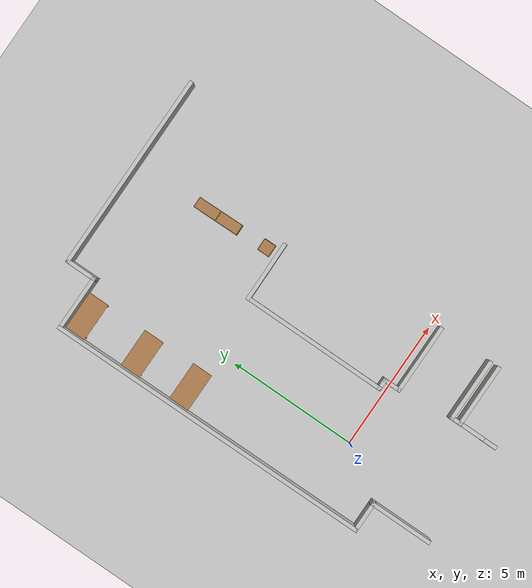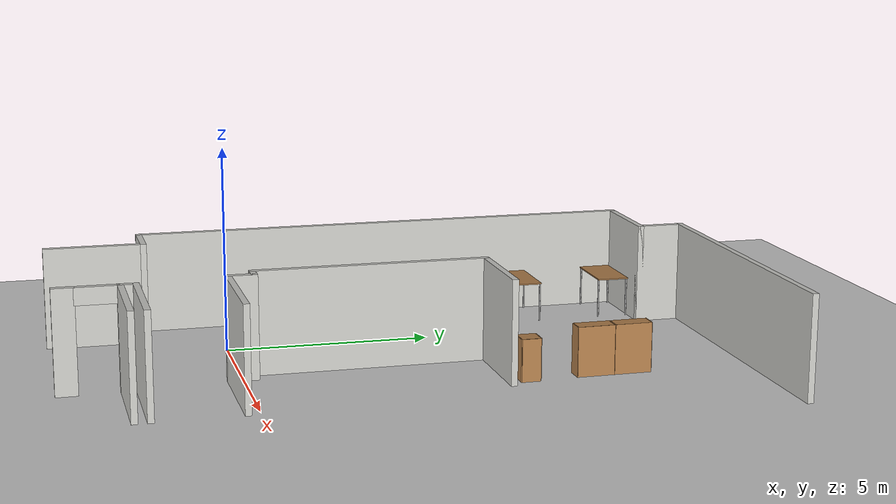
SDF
<sdf version="1.7">
 <world name="default">
  <model name="ground_plane">
   <static>1</static>
   <link name="link">
    <collision name="collision">
     <geometry><plane><normal>0 0 1</normal><size>100 100</size></plane></geometry>
     <surface>
      <contact><collide_bitmask>65535</collide_bitmask></contact>
      <friction><ode><mu>100</mu><mu2>50</mu2></ode></friction>
     </surface>
    </collision>
    <visual name="visual">
     <cast_shadows>0</cast_shadows>
     <geometry><plane><normal>0 0 1</normal><size>100 100</size></plane></geometry>
     <material>
      <script><uri>file://media/materials/scripts/gazebo.material</uri><name>Gazebo/Grey</name></script>
     </material>
    </visual>
   </link>
  </model>
  <model name="map_depo">
   <link name="Wall_11">
    <pose>-9.3996 12.685 0 0 -0 1.5708</pose>
    <visual name="Wall_11_Visual">
     <pose>0 0 1.25 0 -0 0</pose>
     <geometry><box><size>1.25 0.15 2.5</size></box></geometry>
     <material>
      <script><uri>file://media/materials/scripts/gazebo.material</uri><name>Gazebo/CeilingTiled</name></script>
      <ambient>1 1 1 1</ambient>
      <shader type="pixel"/>
     </material>
     <meta><layer>0</layer></meta>
    </visual>
    <collision name="Wall_11_Collision">
     <pose>0 0 1.25 0 -0 0</pose>
     <geometry><box><size>1.25 0.15 2.5</size></box></geometry>
     <surface>
      <friction>
       <ode><mu>1</mu><mu2>1</mu2><fdir1>0 0 0</fdir1><slip1>0</slip1><slip2>0</slip2></ode>
       <torsional>
        <coefficient>1</coefficient>
        <patch_radius>0</patch_radius>
        <surface_radius>0</surface_radius>
        <use_patch_radius>1</use_patch_radius>
        <ode><slip>0</slip></ode>
       </torsional>
      </friction>
      <bounce><restitution_coefficient>0</restitution_coefficient><threshold>1e+06</threshold></bounce>
      <contact>
       <collide_without_contact>0</collide_without_contact>
       <collide_without_contact_bitmask>1</collide_without_contact_bitmask>
       <collide_bitmask>1</collide_bitmask>
       <ode>
        <soft_cfm>0</soft_cfm>
        <soft_erp>0.2</soft_erp>
        <kp>1e+13</kp>
        <kd>1</kd>
        <max_vel>0.01</max_vel>
        <min_depth>0</min_depth>
       </ode>
       <bullet>
        <split_impulse>1</split_impulse>
        <split_impulse_penetration_threshold>-0.01</split_impulse_penetration_threshold>
        <soft_cfm>0</soft_cfm>
        <soft_erp>0.2</soft_erp>
        <kp>1e+13</kp>
        <kd>1</kd>
       </bullet>
      </contact>
     </surface>
    </collision>
   </link>
   <link name="Wall_12">
    <pose>-5.5996 13.235 0 0 -0 0</pose>
    <visual name="Wall_12_Visual">
     <pose>0 0 1.25 0 -0 0</pose>
     <geometry><box><size>7.75 0.15 2.5</size></box></geometry>
     <material>
      <script><uri>file://media/materials/scripts/gazebo.material</uri><name>Gazebo/CeilingTiled</name></script>
      <ambient>1 1 1 1</ambient>
      <shader type="pixel"/>
     </material>
     <meta><layer>0</layer></meta>
    </visual>
    <collision name="Wall_12_Collision">
     <pose>0 0 1.25 0 -0 0</pose>
     <geometry><box><size>7.75 0.15 2.5</size></box></geometry>
     <surface>
      <friction>
       <ode><mu>1</mu><mu2>1</mu2><fdir1>0 0 0</fdir1><slip1>0</slip1><slip2>0</slip2></ode>
       <torsional>
        <coefficient>1</coefficient>
        <patch_radius>0</patch_radius>
        <surface_radius>0</surface_radius>
        <use_patch_radius>1</use_patch_radius>
        <ode><slip>0</slip></ode>
       </torsional>
      </friction>
      <bounce><restitution_coefficient>0</restitution_coefficient><threshold>1e+06</threshold></bounce>
      <contact>
       <collide_without_contact>0</collide_without_contact>
       <collide_without_contact_bitmask>1</collide_without_contact_bitmask>
       <collide_bitmask>1</collide_bitmask>
       <ode>
        <soft_cfm>0</soft_cfm>
        <soft_erp>0.2</soft_erp>
        <kp>1e+13</kp>
        <kd>1</kd>
        <max_vel>0.01</max_vel>
        <min_depth>0</min_depth>
       </ode>
       <bullet>
        <split_impulse>1</split_impulse>
        <split_impulse_penetration_threshold>-0.01</split_impulse_penetration_threshold>
        <soft_cfm>0</soft_cfm>
        <soft_erp>0.2</soft_erp>
        <kp>1e+13</kp>
        <kd>1</kd>
       </bullet>
      </contact>
     </surface>
    </collision>
   </link>
   <link name="Wall_17">
    <pose>-5.75463 7.27506 0 0 0 -3.13263</pose>
    <visual name="Wall_17_Visual">
     <pose>0 0 1.25 0 -0 0</pose>
     <geometry><box><size>2.39372 0.15 2.5</size></box></geometry>
     <material>
      <script><uri>file://media/materials/scripts/gazebo.material</uri><name>Gazebo/CeilingTiled</name></script>
      <ambient>1 1 1 1</ambient>
      <shader type="pixel"/>
     </material>
     <meta><layer>0</layer></meta>
    </visual>
    <collision name="Wall_17_Collision">
     <pose>0 0 1.25 0 -0 0</pose>
     <geometry><box><size>2.39372 0.15 2.5</size></box></geometry>
     <surface>
      <friction>
       <ode><mu>1</mu><mu2>1</mu2><fdir1>0 0 0</fdir1><slip1>0</slip1><slip2>0</slip2></ode>
       <torsional>
        <coefficient>1</coefficient>
        <patch_radius>0</patch_radius>
        <surface_radius>0</surface_radius>
        <use_patch_radius>1</use_patch_radius>
        <ode><slip>0</slip></ode>
       </torsional>
      </friction>
      <bounce><restitution_coefficient>0</restitution_coefficient><threshold>1e+06</threshold></bounce>
      <contact>
       <collide_without_contact>0</collide_without_contact>
       <collide_without_contact_bitmask>1</collide_without_contact_bitmask>
       <collide_bitmask>1</collide_bitmask>
       <ode>
        <soft_cfm>0</soft_cfm>
        <soft_erp>0.2</soft_erp>
        <kp>1e+13</kp>
        <kd>1</kd>
        <max_vel>0.01</max_vel>
        <min_depth>0</min_depth>
       </ode>
       <bullet>
        <split_impulse>1</split_impulse>
        <split_impulse_penetration_threshold>-0.01</split_impulse_penetration_threshold>
        <soft_cfm>0</soft_cfm>
        <soft_erp>0.2</soft_erp>
        <kp>1e+13</kp>
        <kd>1</kd>
       </bullet>
      </contact>
     </surface>
    </collision>
   </link>
   <link name="Wall_18">
    <pose>-6.87312 4.46486 0 0 0 -1.5708</pose>
    <visual name="Wall_18_Visual">
     <pose>0 0 1.25 0 -0 0</pose>
     <geometry><box><size>5.75 0.15 2.5</size></box></geometry>
     <material>
      <script><uri>file://media/materials/scripts/gazebo.material</uri><name>Gazebo/CeilingTiled</name></script>
      <ambient>1 1 1 1</ambient>
      <shader type="pixel"/>
     </material>
     <meta><layer>0</layer></meta>
    </visual>
    <collision name="Wall_18_Collision">
     <pose>0 0 1.25 0 -0 0</pose>
     <geometry><box><size>5.75 0.15 2.5</size></box></geometry>
     <surface>
      <friction>
       <ode><mu>1</mu><mu2>1</mu2><fdir1>0 0 0</fdir1><slip1>0</slip1><slip2>0</slip2></ode>
       <torsional>
        <coefficient>1</coefficient>
        <patch_radius>0</patch_radius>
        <surface_radius>0</surface_radius>
        <use_patch_radius>1</use_patch_radius>
        <ode><slip>0</slip></ode>
       </torsional>
      </friction>
      <bounce><restitution_coefficient>0</restitution_coefficient><threshold>1e+06</threshold></bounce>
      <contact>
       <collide_without_contact>0</collide_without_contact>
       <collide_without_contact_bitmask>1</collide_without_contact_bitmask>
       <collide_bitmask>1</collide_bitmask>
       <ode>
        <soft_cfm>0</soft_cfm>
        <soft_erp>0.2</soft_erp>
        <kp>1e+13</kp>
        <kd>1</kd>
        <max_vel>0.01</max_vel>
        <min_depth>0</min_depth>
       </ode>
       <bullet>
        <split_impulse>1</split_impulse>
        <split_impulse_penetration_threshold>-0.01</split_impulse_penetration_threshold>
        <soft_cfm>0</soft_cfm>
        <soft_erp>0.2</soft_erp>
        <kp>1e+13</kp>
        <kd>1</kd>
       </bullet>
      </contact>
     </surface>
    </collision>
   </link>
   <link name="Wall_20">
    <pose>-6.69812 1.66486 0 0 -0 0</pose>
    <visual name="Wall_20_Visual">
     <pose>0 0 1.25 0 -0 0</pose>
     <geometry><box><size>0.5 0.15 2.5</size></box></geometry>
     <material>
      <script><uri>file://media/materials/scripts/gazebo.material</uri><name>Gazebo/CeilingTiled</name></script>
      <ambient>1 1 1 1</ambient>
      <shader type="pixel"/>
     </material>
     <meta><layer>0</layer></meta>
    </visual>
    <collision name="Wall_20_Collision">
     <pose>0 0 1.25 0 -0 0</pose>
     <geometry><box><size>0.5 0.15 2.5</size></box></geometry>
     <surface>
      <friction>
       <ode><mu>1</mu><mu2>1</mu2><fdir1>0 0 0</fdir1><slip1>0</slip1><slip2>0</slip2></ode>
       <torsional>
        <coefficient>1</coefficient>
        <patch_radius>0</patch_radius>
        <surface_radius>0</surface_radius>
        <use_patch_radius>1</use_patch_radius>
        <ode><slip>0</slip></ode>
       </torsional>
      </friction>
      <bounce><restitution_coefficient>0</restitution_coefficient><threshold>1e+06</threshold></bounce>
      <contact>
       <collide_without_contact>0</collide_without_contact>
       <collide_without_contact_bitmask>1</collide_without_contact_bitmask>
       <collide_bitmask>1</collide_bitmask>
       <ode>
        <soft_cfm>0</soft_cfm>
        <soft_erp>0.2</soft_erp>
        <kp>1e+13</kp>
        <kd>1</kd>
        <max_vel>0.01</max_vel>
        <min_depth>0</min_depth>
       </ode>
       <bullet>
        <split_impulse>1</split_impulse>
        <split_impulse_penetration_threshold>-0.01</split_impulse_penetration_threshold>
        <soft_cfm>0</soft_cfm>
        <soft_erp>0.2</soft_erp>
        <kp>1e+13</kp>
        <kd>1</kd>
       </bullet>
      </contact>
     </surface>
    </collision>
   </link>
   <link name="Wall_21">
    <pose>-6.52312 1.36486 0 0 0 -1.5708</pose>
    <visual name="Wall_21_Visual">
     <pose>0 0 1.25 0 -0 0</pose>
     <geometry><box><size>0.75 0.15 2.5</size></box></geometry>
     <material>
      <script><uri>file://media/materials/scripts/gazebo.material</uri><name>Gazebo/CeilingTiled</name></script>
      <ambient>1 1 1 1</ambient>
      <shader type="pixel"/>
     </material>
     <meta><layer>0</layer></meta>
    </visual>
    <collision name="Wall_21_Collision">
     <pose>0 0 1.25 0 -0 0</pose>
     <geometry><box><size>0.75 0.15 2.5</size></box></geometry>
     <surface>
      <friction>
       <ode><mu>1</mu><mu2>1</mu2><fdir1>0 0 0</fdir1><slip1>0</slip1><slip2>0</slip2></ode>
       <torsional>
        <coefficient>1</coefficient>
        <patch_radius>0</patch_radius>
        <surface_radius>0</surface_radius>
        <use_patch_radius>1</use_patch_radius>
        <ode><slip>0</slip></ode>
       </torsional>
      </friction>
      <bounce><restitution_coefficient>0</restitution_coefficient><threshold>1e+06</threshold></bounce>
      <contact>
       <collide_without_contact>0</collide_without_contact>
       <collide_without_contact_bitmask>1</collide_without_contact_bitmask>
       <collide_bitmask>1</collide_bitmask>
       <ode>
        <soft_cfm>0</soft_cfm>
        <soft_erp>0.2</soft_erp>
        <kp>1e+13</kp>
        <kd>1</kd>
        <max_vel>0.01</max_vel>
        <min_depth>0</min_depth>
       </ode>
       <bullet>
        <split_impulse>1</split_impulse>
        <split_impulse_penetration_threshold>-0.01</split_impulse_penetration_threshold>
        <soft_cfm>0</soft_cfm>
        <soft_erp>0.2</soft_erp>
        <kp>1e+13</kp>
        <kd>1</kd>
       </bullet>
      </contact>
     </surface>
    </collision>
   </link>
   <link name="Wall_22">
    <pose>-5.22312 1.06486 0 0 -0 0</pose>
    <visual name="Wall_22_Visual">
     <pose>0 0 1.25 0 -0 0</pose>
     <geometry><box><size>2.75 0.15 2.5</size></box></geometry>
     <material>
      <script><uri>file://media/materials/scripts/gazebo.material</uri><name>Gazebo/CeilingTiled</name></script>
      <ambient>1 1 1 1</ambient>
      <shader type="pixel"/>
     </material>
     <meta><layer>0</layer></meta>
    </visual>
    <collision name="Wall_22_Collision">
     <pose>0 0 1.25 0 -0 0</pose>
     <geometry><box><size>2.75 0.15 2.5</size></box></geometry>
     <surface>
      <friction>
       <ode><mu>1</mu><mu2>1</mu2><fdir1>0 0 0</fdir1><slip1>0</slip1><slip2>0</slip2></ode>
       <torsional>
        <coefficient>1</coefficient>
        <patch_radius>0</patch_radius>
        <surface_radius>0</surface_radius>
        <use_patch_radius>1</use_patch_radius>
        <ode><slip>0</slip></ode>
       </torsional>
      </friction>
      <bounce><restitution_coefficient>0</restitution_coefficient><threshold>1e+06</threshold></bounce>
      <contact>
       <collide_without_contact>0</collide_without_contact>
       <collide_without_contact_bitmask>1</collide_without_contact_bitmask>
       <collide_bitmask>1</collide_bitmask>
       <ode>
        <soft_cfm>0</soft_cfm>
        <soft_erp>0.2</soft_erp>
        <kp>1e+13</kp>
        <kd>1</kd>
        <max_vel>0.01</max_vel>
        <min_depth>0</min_depth>
       </ode>
       <bullet>
        <split_impulse>1</split_impulse>
        <split_impulse_penetration_threshold>-0.01</split_impulse_penetration_threshold>
        <soft_cfm>0</soft_cfm>
        <soft_erp>0.2</soft_erp>
        <kp>1e+13</kp>
        <kd>1</kd>
       </bullet>
      </contact>
     </surface>
    </collision>
   </link>
   <link name="Wall_24">
    <pose>-5.09812 -1.03514 0 0 -0 3.14159</pose>
    <visual name="Wall_24_Visual">
     <pose>0 0 1.25 0 -0 0</pose>
     <geometry><box><size>2.5 0.15 2.5</size></box></geometry>
     <material>
      <script><uri>file://media/materials/scripts/gazebo.material</uri><name>Gazebo/CeilingTiled</name></script>
      <ambient>1 1 1 1</ambient>
      <shader type="pixel"/>
     </material>
     <meta><layer>0</layer></meta>
    </visual>
    <collision name="Wall_24_Collision">
     <pose>0 0 1.25 0 -0 0</pose>
     <geometry><box><size>2.5 0.15 2.5</size></box></geometry>
     <surface>
      <friction>
       <ode><mu>1</mu><mu2>1</mu2><fdir1>0 0 0</fdir1><slip1>0</slip1><slip2>0</slip2></ode>
       <torsional>
        <coefficient>1</coefficient>
        <patch_radius>0</patch_radius>
        <surface_radius>0</surface_radius>
        <use_patch_radius>1</use_patch_radius>
        <ode><slip>0</slip></ode>
       </torsional>
      </friction>
      <bounce><restitution_coefficient>0</restitution_coefficient><threshold>1e+06</threshold></bounce>
      <contact>
       <collide_without_contact>0</collide_without_contact>
       <collide_without_contact_bitmask>1</collide_without_contact_bitmask>
       <collide_bitmask>1</collide_bitmask>
       <ode>
        <soft_cfm>0</soft_cfm>
        <soft_erp>0.2</soft_erp>
        <kp>1e+13</kp>
        <kd>1</kd>
        <max_vel>0.01</max_vel>
        <min_depth>0</min_depth>
       </ode>
       <bullet>
        <split_impulse>1</split_impulse>
        <split_impulse_penetration_threshold>-0.01</split_impulse_penetration_threshold>
        <soft_cfm>0</soft_cfm>
        <soft_erp>0.2</soft_erp>
        <kp>1e+13</kp>
        <kd>1</kd>
       </bullet>
      </contact>
     </surface>
    </collision>
   </link>
   <link name="Wall_25">
    <pose>-6.27312 -1.21014 0 0 0 -1.5708</pose>
    <visual name="Wall_25_Visual">
     <pose>0 0 1.25 0 -0 0</pose>
     <geometry><box><size>0.5 0.15 2.5</size></box></geometry>
     <material>
      <script><uri>file://media/materials/scripts/gazebo.material</uri><name>Gazebo/CeilingTiled</name></script>
      <ambient>1 1 1 1</ambient>
      <shader type="pixel"/>
     </material>
     <meta><layer>0</layer></meta>
    </visual>
    <collision name="Wall_25_Collision">
     <pose>0 0 1.25 0 -0 0</pose>
     <geometry><box><size>0.5 0.15 2.5</size></box></geometry>
     <surface>
      <friction>
       <ode><mu>1</mu><mu2>1</mu2><fdir1>0 0 0</fdir1><slip1>0</slip1><slip2>0</slip2></ode>
       <torsional>
        <coefficient>1</coefficient>
        <patch_radius>0</patch_radius>
        <surface_radius>0</surface_radius>
        <use_patch_radius>1</use_patch_radius>
        <ode><slip>0</slip></ode>
       </torsional>
      </friction>
      <bounce><restitution_coefficient>0</restitution_coefficient><threshold>1e+06</threshold></bounce>
      <contact>
       <collide_without_contact>0</collide_without_contact>
       <collide_without_contact_bitmask>1</collide_without_contact_bitmask>
       <collide_bitmask>1</collide_bitmask>
       <ode>
        <soft_cfm>0</soft_cfm>
        <soft_erp>0.2</soft_erp>
        <kp>1e+13</kp>
        <kd>1</kd>
        <max_vel>0.01</max_vel>
        <min_depth>0</min_depth>
       </ode>
       <bullet>
        <split_impulse>1</split_impulse>
        <split_impulse_penetration_threshold>-0.01</split_impulse_penetration_threshold>
        <soft_cfm>0</soft_cfm>
        <soft_erp>0.2</soft_erp>
        <kp>1e+13</kp>
        <kd>1</kd>
       </bullet>
      </contact>
     </surface>
    </collision>
   </link>
   <link name="Wall_27">
    <pose>-6.27245 -2.66028 0 0 0 -1.5708</pose>
    <inertial>
     <inertia><ixx>0</ixx><ixy>0</ixy><ixz>0</ixz><iyy>0</iyy><iyz>0</iyz><izz>0</izz></inertia>
     <mass>0</mass>
    </inertial>
    <visual name="Wall_27_Visual">
     <pose>0 0 1.25 0 -0 0</pose>
     <geometry><box><size>0.527686 0.15 2.5</size></box></geometry>
     <material>
      <script><uri>file://media/materials/scripts/gazebo.material</uri><name>Gazebo/CeilingTiled</name></script>
      <ambient>1 1 1 1</ambient>
      <shader type="pixel"/>
     </material>
     <meta><layer>0</layer></meta>
    </visual>
    <collision name="Wall_27_Collision">
     <pose>0 0 1.25 0 -0 0</pose>
     <geometry><box><size>0.527686 0.15 2.5</size></box></geometry>
     <surface>
      <friction>
       <ode><mu>1</mu><mu2>1</mu2><fdir1>0 0 0</fdir1><slip1>0</slip1><slip2>0</slip2></ode>
       <torsional>
        <coefficient>1</coefficient>
        <patch_radius>0</patch_radius>
        <surface_radius>0</surface_radius>
        <use_patch_radius>1</use_patch_radius>
        <ode><slip>0</slip></ode>
       </torsional>
      </friction>
      <bounce><restitution_coefficient>0</restitution_coefficient><threshold>1e+06</threshold></bounce>
      <contact>
       <collide_without_contact>0</collide_without_contact>
       <collide_without_contact_bitmask>1</collide_without_contact_bitmask>
       <collide_bitmask>1</collide_bitmask>
       <ode>
        <soft_cfm>0</soft_cfm>
        <soft_erp>0.2</soft_erp>
        <kp>1e+13</kp>
        <kd>1</kd>
        <max_vel>0.01</max_vel>
        <min_depth>0</min_depth>
       </ode>
       <bullet>
        <split_impulse>1</split_impulse>
        <split_impulse_penetration_threshold>-0.01</split_impulse_penetration_threshold>
        <soft_cfm>0</soft_cfm>
        <soft_erp>0.2</soft_erp>
        <kp>1e+13</kp>
        <kd>1</kd>
       </bullet>
      </contact>
     </surface>
    </collision>
   </link>
   <link name="Wall_27_clone">
    <pose>-6.27049 -1.92748 1.04146 0 0 -1.5708</pose>
    <inertial>
     <inertia><ixx>0</ixx><ixy>0</ixy><ixz>0</ixz><iyy>0</iyy><iyz>0</iyz><izz>0</izz></inertia>
     <mass>0</mass>
    </inertial>
    <visual name="Wall_27_Visual">
     <pose>0 0 1.25 0 -0 0</pose>
     <geometry><box><size>1.00092 0.15 0.41421</size></box></geometry>
     <material>
      <script><uri>file://media/materials/scripts/gazebo.material</uri><name>Gazebo/CeilingTiled</name></script>
      <ambient>1 1 1 1</ambient>
      <shader type="pixel"/>
     </material>
     <meta><layer>0</layer></meta>
    </visual>
    <collision name="Wall_27_Collision">
     <pose>0 0 1.25 0 -0 0</pose>
     <geometry><box><size>1.00092 0.15 0.41421</size></box></geometry>
     <surface>
      <friction>
       <ode><mu>1</mu><mu2>1</mu2><fdir1>0 0 0</fdir1><slip1>0</slip1><slip2>0</slip2></ode>
       <torsional>
        <coefficient>1</coefficient>
        <patch_radius>0</patch_radius>
        <surface_radius>0</surface_radius>
        <use_patch_radius>1</use_patch_radius>
        <ode><slip>0</slip></ode>
       </torsional>
      </friction>
      <bounce><restitution_coefficient>0</restitution_coefficient><threshold>1e+06</threshold></bounce>
      <contact>
       <collide_without_contact>0</collide_without_contact>
       <collide_without_contact_bitmask>1</collide_without_contact_bitmask>
       <collide_bitmask>1</collide_bitmask>
       <ode>
        <soft_cfm>0</soft_cfm>
        <soft_erp>0.2</soft_erp>
        <kp>1e+13</kp>
        <kd>1</kd>
        <max_vel>0.01</max_vel>
        <min_depth>0</min_depth>
       </ode>
       <bullet>
        <split_impulse>1</split_impulse>
        <split_impulse_penetration_threshold>-0.01</split_impulse_penetration_threshold>
        <soft_cfm>0</soft_cfm>
        <soft_erp>0.2</soft_erp>
        <kp>1e+13</kp>
        <kd>1</kd>
       </bullet>
      </contact>
     </surface>
    </collision>
   </link>
   <link name="Wall_4">
    <pose>-11.4734 5.83174 0 0 -0 1.57495</pose>
    <visual name="Wall_4_Visual">
     <pose>0 0 1.25 0 -0 0</pose>
     <geometry><box><size>12.7566 0.15 2.5</size></box></geometry>
     <material>
      <script><uri>file://media/materials/scripts/gazebo.material</uri><name>Gazebo/CeilingTiled</name></script>
      <ambient>1 1 1 1</ambient>
      <shader type="pixel"/>
     </material>
     <meta><layer>0</layer></meta>
    </visual>
    <collision name="Wall_4_Collision">
     <pose>0 0 1.25 0 -0 0</pose>
     <geometry><box><size>12.7566 0.15 2.5</size></box></geometry>
     <surface>
      <friction>
       <ode><mu>1</mu><mu2>1</mu2><fdir1>0 0 0</fdir1><slip1>0</slip1><slip2>0</slip2></ode>
       <torsional>
        <coefficient>1</coefficient>
        <patch_radius>0</patch_radius>
        <surface_radius>0</surface_radius>
        <use_patch_radius>1</use_patch_radius>
        <ode><slip>0</slip></ode>
       </torsional>
      </friction>
      <bounce><restitution_coefficient>0</restitution_coefficient><threshold>1e+06</threshold></bounce>
      <contact>
       <collide_without_contact>0</collide_without_contact>
       <collide_without_contact_bitmask>1</collide_without_contact_bitmask>
       <collide_bitmask>1</collide_bitmask>
       <ode>
        <soft_cfm>0</soft_cfm>
        <soft_erp>0.2</soft_erp>
        <kp>1e+13</kp>
        <kd>1</kd>
        <max_vel>0.01</max_vel>
        <min_depth>0</min_depth>
       </ode>
       <bullet>
        <split_impulse>1</split_impulse>
        <split_impulse_penetration_threshold>-0.01</split_impulse_penetration_threshold>
        <soft_cfm>0</soft_cfm>
        <soft_erp>0.2</soft_erp>
        <kp>1e+13</kp>
        <kd>1</kd>
       </bullet>
      </contact>
     </surface>
    </collision>
   </link>
   <link name="Wall_5">
    <pose>-10.4496 12.135 0 0 -0 0</pose>
    <visual name="Wall_5_Visual">
     <pose>0 0 1.25 0 -0 0</pose>
     <geometry><box><size>2.25 0.15 2.5</size></box></geometry>
     <material>
      <script><uri>file://media/materials/scripts/gazebo.material</uri><name>Gazebo/CeilingTiled</name></script>
      <ambient>1 1 1 1</ambient>
      <shader type="pixel"/>
     </material>
     <meta><layer>0</layer></meta>
    </visual>
    <collision name="Wall_5_Collision">
     <pose>0 0 1.25 0 -0 0</pose>
     <geometry><box><size>2.25 0.15 2.5</size></box></geometry>
     <surface>
      <friction>
       <ode><mu>1</mu><mu2>1</mu2><fdir1>0 0 0</fdir1><slip1>0</slip1><slip2>0</slip2></ode>
       <torsional>
        <coefficient>1</coefficient>
        <patch_radius>0</patch_radius>
        <surface_radius>0</surface_radius>
        <use_patch_radius>1</use_patch_radius>
        <ode><slip>0</slip></ode>
       </torsional>
      </friction>
      <bounce><restitution_coefficient>0</restitution_coefficient><threshold>1e+06</threshold></bounce>
      <contact>
       <collide_without_contact>0</collide_without_contact>
       <collide_without_contact_bitmask>1</collide_without_contact_bitmask>
       <collide_bitmask>1</collide_bitmask>
       <ode>
        <soft_cfm>0</soft_cfm>
        <soft_erp>0.2</soft_erp>
        <kp>1e+13</kp>
        <kd>1</kd>
        <max_vel>0.01</max_vel>
        <min_depth>0</min_depth>
       </ode>
       <bullet>
        <split_impulse>1</split_impulse>
        <split_impulse_penetration_threshold>-0.01</split_impulse_penetration_threshold>
        <soft_cfm>0</soft_cfm>
        <soft_erp>0.2</soft_erp>
        <kp>1e+13</kp>
        <kd>1</kd>
       </bullet>
      </contact>
     </surface>
    </collision>
   </link>
   <link name="Wall_50">
    <pose>-10.3473 -1.64648 0 0 -0 1.5708</pose>
    <visual name="Wall_50_Visual">
     <pose>0 0 1.25 0 -0 0</pose>
     <geometry><box><size>2.5 0.15 2.5</size></box></geometry>
     <material>
      <script><uri>file://media/materials/scripts/gazebo.material</uri><name>Gazebo/CeilingTiled</name></script>
      <ambient>1 1 1 1</ambient>
      <shader type="pixel"/>
     </material>
     <meta><layer>0</layer></meta>
    </visual>
    <collision name="Wall_50_Collision">
     <pose>0 0 1.25 0 -0 0</pose>
     <geometry><box><size>2.5 0.15 2.5</size></box></geometry>
     <surface>
      <friction>
       <ode><mu>1</mu><mu2>1</mu2><fdir1>0 0 0</fdir1><slip1>0</slip1><slip2>0</slip2></ode>
       <torsional>
        <coefficient>1</coefficient>
        <patch_radius>0</patch_radius>
        <surface_radius>0</surface_radius>
        <use_patch_radius>1</use_patch_radius>
        <ode><slip>0</slip></ode>
       </torsional>
      </friction>
      <bounce><restitution_coefficient>0</restitution_coefficient><threshold>1e+06</threshold></bounce>
      <contact>
       <collide_without_contact>0</collide_without_contact>
       <collide_without_contact_bitmask>1</collide_without_contact_bitmask>
       <collide_bitmask>1</collide_bitmask>
       <ode>
        <soft_cfm>0</soft_cfm>
        <soft_erp>0.2</soft_erp>
        <kp>1e+13</kp>
        <kd>1</kd>
        <max_vel>0.01</max_vel>
        <min_depth>0</min_depth>
       </ode>
       <bullet>
        <split_impulse>1</split_impulse>
        <split_impulse_penetration_threshold>-0.01</split_impulse_penetration_threshold>
        <soft_cfm>0</soft_cfm>
        <soft_erp>0.2</soft_erp>
        <kp>1e+13</kp>
        <kd>1</kd>
       </bullet>
      </contact>
     </surface>
    </collision>
   </link>
   <link name="Wall_56">
    <pose>-10.8973 -0.471484 0 0 -0 0</pose>
    <visual name="Wall_56_Visual">
     <pose>0 0 1.25 0 -0 0</pose>
     <geometry><box><size>1.25 0.15 2.5</size></box></geometry>
     <material>
      <script><uri>file://media/materials/scripts/gazebo.material</uri><name>Gazebo/CeilingTiled</name></script>
      <ambient>1 1 1 1</ambient>
      <shader type="pixel"/>
     </material>
     <meta><layer>0</layer></meta>
    </visual>
    <collision name="Wall_56_Collision">
     <pose>0 0 1.25 0 -0 0</pose>
     <geometry><box><size>1.25 0.15 2.5</size></box></geometry>
     <surface>
      <friction>
       <ode><mu>1</mu><mu2>1</mu2><fdir1>0 0 0</fdir1><slip1>0</slip1><slip2>0</slip2></ode>
       <torsional>
        <coefficient>1</coefficient>
        <patch_radius>0</patch_radius>
        <surface_radius>0</surface_radius>
        <use_patch_radius>1</use_patch_radius>
        <ode><slip>0</slip></ode>
       </torsional>
      </friction>
      <bounce><restitution_coefficient>0</restitution_coefficient><threshold>1e+06</threshold></bounce>
      <contact>
       <collide_without_contact>0</collide_without_contact>
       <collide_without_contact_bitmask>1</collide_without_contact_bitmask>
       <collide_bitmask>1</collide_bitmask>
       <ode>
        <soft_cfm>0</soft_cfm>
        <soft_erp>0.2</soft_erp>
        <kp>1e+13</kp>
        <kd>1</kd>
        <max_vel>0.01</max_vel>
        <min_depth>0</min_depth>
       </ode>
       <bullet>
        <split_impulse>1</split_impulse>
        <split_impulse_penetration_threshold>-0.01</split_impulse_penetration_threshold>
        <soft_cfm>0</soft_cfm>
        <soft_erp>0.2</soft_erp>
        <kp>1e+13</kp>
        <kd>1</kd>
       </bullet>
      </contact>
     </surface>
    </collision>
   </link>
   <link name="Wall_58">
    <pose>-5.09812 -1.38514 0 0 -0 0</pose>
    <visual name="Wall_58_Visual">
     <pose>0 0 1.25 0 -0 0</pose>
     <geometry><box><size>2.5 0.15 2.5</size></box></geometry>
     <material>
      <script><uri>file://media/materials/scripts/gazebo.material</uri><name>Gazebo/CeilingTiled</name></script>
      <ambient>1 1 1 1</ambient>
      <shader type="pixel"/>
     </material>
     <meta><layer>0</layer></meta>
    </visual>
    <collision name="Wall_58_Collision">
     <pose>0 0 1.25 0 -0 0</pose>
     <geometry><box><size>2.5 0.15 2.5</size></box></geometry>
     <surface>
      <friction>
       <ode><mu>1</mu><mu2>1</mu2><fdir1>0 0 0</fdir1><slip1>0</slip1><slip2>0</slip2></ode>
       <torsional>
        <coefficient>1</coefficient>
        <patch_radius>0</patch_radius>
        <surface_radius>0</surface_radius>
        <use_patch_radius>1</use_patch_radius>
        <ode><slip>0</slip></ode>
       </torsional>
      </friction>
      <bounce><restitution_coefficient>0</restitution_coefficient><threshold>1e+06</threshold></bounce>
      <contact>
       <collide_without_contact>0</collide_without_contact>
       <collide_without_contact_bitmask>1</collide_without_contact_bitmask>
       <collide_bitmask>1</collide_bitmask>
       <ode>
        <soft_cfm>0</soft_cfm>
        <soft_erp>0.2</soft_erp>
        <kp>1e+13</kp>
        <kd>1</kd>
        <max_vel>0.01</max_vel>
        <min_depth>0</min_depth>
       </ode>
       <bullet>
        <split_impulse>1</split_impulse>
        <split_impulse_penetration_threshold>-0.01</split_impulse_penetration_threshold>
        <soft_cfm>0</soft_cfm>
        <soft_erp>0.2</soft_erp>
        <kp>1e+13</kp>
        <kd>1</kd>
       </bullet>
      </contact>
     </surface>
    </collision>
   </link>
   <static>1</static>
   <pose>9.09356 -1.35985 0 0 -0 0</pose>
  </model>
  <model name="table">
   <static>1</static>
   <link name="link">
    <collision name="surface">
     <pose>0 0 1 0 -0 0</pose>
     <geometry><box><size>1.5 0.8 0.03</size></box></geometry>
     <surface><friction><ode><mu>0.6</mu><mu2>0.6</mu2></ode></friction></surface>
    </collision>
    <visual name="visual1">
     <pose>0 0 1 0 -0 0</pose>
     <geometry><box><size>1.5 0.8 0.03</size></box></geometry>
     <material>
      <script><uri>file://media/materials/scripts/gazebo.material</uri><name>Gazebo/Wood</name></script>
     </material>
    </visual>
    <collision name="front_left_leg">
     <pose>0.68 0.38 0.5 0 -0 0</pose>
     <geometry><cylinder><radius>0.02</radius><length>1</length></cylinder></geometry>
    </collision>
    <visual name="front_left_leg">
     <pose>0.68 0.38 0.5 0 -0 0</pose>
     <geometry><cylinder><radius>0.02</radius><length>1</length></cylinder></geometry>
     <material>
      <script><uri>file://media/materials/scripts/gazebo.material</uri><name>Gazebo/Grey</name></script>
     </material>
    </visual>
    <collision name="front_right_leg">
     <pose>0.68 -0.38 0.5 0 -0 0</pose>
     <geometry><cylinder><radius>0.02</radius><length>1</length></cylinder></geometry>
    </collision>
    <visual name="front_right_leg">
     <pose>0.68 -0.38 0.5 0 -0 0</pose>
     <geometry><cylinder><radius>0.02</radius><length>1</length></cylinder></geometry>
     <material>
      <script><uri>file://media/materials/scripts/gazebo.material</uri><name>Gazebo/Grey</name></script>
     </material>
    </visual>
    <collision name="back_right_leg">
     <pose>-0.68 -0.38 0.5 0 -0 0</pose>
     <geometry><cylinder><radius>0.02</radius><length>1</length></cylinder></geometry>
    </collision>
    <visual name="back_right_leg">
     <pose>-0.68 -0.38 0.5 0 -0 0</pose>
     <geometry><cylinder><radius>0.02</radius><length>1</length></cylinder></geometry>
     <material>
      <script><uri>file://media/materials/scripts/gazebo.material</uri><name>Gazebo/Grey</name></script>
     </material>
    </visual>
    <collision name="back_left_leg">
     <pose>-0.68 0.38 0.5 0 -0 0</pose>
     <geometry><cylinder><radius>0.02</radius><length>1</length></cylinder></geometry>
    </collision>
    <visual name="back_left_leg">
     <pose>-0.68 0.38 0.5 0 -0 0</pose>
     <geometry><cylinder><radius>0.02</radius><length>1</length></cylinder></geometry>
     <material>
      <script><uri>file://media/materials/scripts/gazebo.material</uri><name>Gazebo/Grey</name></script>
     </material>
    </visual>
   </link>
   <pose>-1.54846 5.81718 0 0 -0 0</pose>
  </model>
  <model name="table_0">
   <static>1</static>
   <link name="link">
    <collision name="surface">
     <pose>0 0 1 0 -0 0</pose>
     <geometry><box><size>1.5 0.8 0.03</size></box></geometry>
     <surface><friction><ode><mu>0.6</mu><mu2>0.6</mu2></ode></friction></surface>
    </collision>
    <visual name="visual1">
     <pose>0 0 1 0 -0 0</pose>
     <geometry><box><size>1.5 0.8 0.03</size></box></geometry>
     <material>
      <script><uri>file://media/materials/scripts/gazebo.material</uri><name>Gazebo/Wood</name></script>
     </material>
    </visual>
    <collision name="front_left_leg">
     <pose>0.68 0.38 0.5 0 -0 0</pose>
     <geometry><cylinder><radius>0.02</radius><length>1</length></cylinder></geometry>
    </collision>
    <visual name="front_left_leg">
     <pose>0.68 0.38 0.5 0 -0 0</pose>
     <geometry><cylinder><radius>0.02</radius><length>1</length></cylinder></geometry>
     <material>
      <script><uri>file://media/materials/scripts/gazebo.material</uri><name>Gazebo/Grey</name></script>
     </material>
    </visual>
    <collision name="front_right_leg">
     <pose>0.68 -0.38 0.5 0 -0 0</pose>
     <geometry><cylinder><radius>0.02</radius><length>1</length></cylinder></geometry>
    </collision>
    <visual name="front_right_leg">
     <pose>0.68 -0.38 0.5 0 -0 0</pose>
     <geometry><cylinder><radius>0.02</radius><length>1</length></cylinder></geometry>
     <material>
      <script><uri>file://media/materials/scripts/gazebo.material</uri><name>Gazebo/Grey</name></script>
     </material>
    </visual>
    <collision name="back_right_leg">
     <pose>-0.68 -0.38 0.5 0 -0 0</pose>
     <geometry><cylinder><radius>0.02</radius><length>1</length></cylinder></geometry>
    </collision>
    <visual name="back_right_leg">
     <pose>-0.68 -0.38 0.5 0 -0 0</pose>
     <geometry><cylinder><radius>0.02</radius><length>1</length></cylinder></geometry>
     <material>
      <script><uri>file://media/materials/scripts/gazebo.material</uri><name>Gazebo/Grey</name></script>
     </material>
    </visual>
    <collision name="back_left_leg">
     <pose>-0.68 0.38 0.5 0 -0 0</pose>
     <geometry><cylinder><radius>0.02</radius><length>1</length></cylinder></geometry>
    </collision>
    <visual name="back_left_leg">
     <pose>-0.68 0.38 0.5 0 -0 0</pose>
     <geometry><cylinder><radius>0.02</radius><length>1</length></cylinder></geometry>
     <material>
      <script><uri>file://media/materials/scripts/gazebo.material</uri><name>Gazebo/Grey</name></script>
     </material>
    </visual>
   </link>
   <pose>-1.55347 7.90638 0 0 -0 0</pose>
  </model>
  <model name="table_1">
   <static>1</static>
   <link name="link">
    <collision name="surface">
     <pose>0 0 1 0 -0 0</pose>
     <geometry><box><size>1.5 0.8 0.03</size></box></geometry>
     <surface><friction><ode><mu>0.6</mu><mu2>0.6</mu2></ode></friction></surface>
    </collision>
    <visual name="visual1">
     <pose>0 0 1 0 -0 0</pose>
     <geometry><box><size>1.5 0.8 0.03</size></box></geometry>
     <material>
      <script><uri>file://media/materials/scripts/gazebo.material</uri><name>Gazebo/Wood</name></script>
     </material>
    </visual>
    <collision name="front_left_leg">
     <pose>0.68 0.38 0.5 0 -0 0</pose>
     <geometry><cylinder><radius>0.02</radius><length>1</length></cylinder></geometry>
    </collision>
    <visual name="front_left_leg">
     <pose>0.68 0.38 0.5 0 -0 0</pose>
     <geometry><cylinder><radius>0.02</radius><length>1</length></cylinder></geometry>
     <material>
      <script><uri>file://media/materials/scripts/gazebo.material</uri><name>Gazebo/Grey</name></script>
     </material>
    </visual>
    <collision name="front_right_leg">
     <pose>0.68 -0.38 0.5 0 -0 0</pose>
     <geometry><cylinder><radius>0.02</radius><length>1</length></cylinder></geometry>
    </collision>
    <visual name="front_right_leg">
     <pose>0.68 -0.38 0.5 0 -0 0</pose>
     <geometry><cylinder><radius>0.02</radius><length>1</length></cylinder></geometry>
     <material>
      <script><uri>file://media/materials/scripts/gazebo.material</uri><name>Gazebo/Grey</name></script>
     </material>
    </visual>
    <collision name="back_right_leg">
     <pose>-0.68 -0.38 0.5 0 -0 0</pose>
     <geometry><cylinder><radius>0.02</radius><length>1</length></cylinder></geometry>
    </collision>
    <visual name="back_right_leg">
     <pose>-0.68 -0.38 0.5 0 -0 0</pose>
     <geometry><cylinder><radius>0.02</radius><length>1</length></cylinder></geometry>
     <material>
      <script><uri>file://media/materials/scripts/gazebo.material</uri><name>Gazebo/Grey</name></script>
     </material>
    </visual>
    <collision name="back_left_leg">
     <pose>-0.68 0.38 0.5 0 -0 0</pose>
     <geometry><cylinder><radius>0.02</radius><length>1</length></cylinder></geometry>
    </collision>
    <visual name="back_left_leg">
     <pose>-0.68 0.38 0.5 0 -0 0</pose>
     <geometry><cylinder><radius>0.02</radius><length>1</length></cylinder></geometry>
     <material>
      <script><uri>file://media/materials/scripts/gazebo.material</uri><name>Gazebo/Grey</name></script>
     </material>
    </visual>
   </link>
   <pose>-1.57035 10.2757 0 0 -0 0</pose>
  </model>
  <model name="bookshelf">
   <static>1</static>
   <link name="link">
    <inertial><mass>1</mass></inertial>
    <collision name="back">
     <pose>0 0.005 0.6 0 -0 0</pose>
     <geometry><box><size>0.9 0.01 1.2</size></box></geometry>
    </collision>
    <visual name="visual1">
     <pose>0 0.005 0.6 0 -0 0</pose>
     <geometry><box><size>0.9 0.01 1.2</size></box></geometry>
     <material>
      <script><uri>file://media/materials/scripts/gazebo.material</uri><name>Gazebo/Wood</name></script>
     </material>
    </visual>
    <collision name="left_side">
     <pose>0.45 -0.195 0.6 0 -0 0</pose>
     <geometry><box><size>0.02 0.4 1.2</size></box></geometry>
    </collision>
    <visual name="visual2">
     <pose>0.45 -0.195 0.6 0 -0 0</pose>
     <geometry><box><size>0.02 0.4 1.2</size></box></geometry>
     <material>
      <script><uri>file://media/materials/scripts/gazebo.material</uri><name>Gazebo/Wood</name></script>
     </material>
    </visual>
    <collision name="right_side">
     <pose>-0.45 -0.195 0.6 0 -0 0</pose>
     <geometry><box><size>0.02 0.4 1.2</size></box></geometry>
    </collision>
    <visual name="visual3">
     <pose>-0.45 -0.195 0.6 0 -0 0</pose>
     <geometry><box><size>0.02 0.4 1.2</size></box></geometry>
     <material>
      <script><uri>file://media/materials/scripts/gazebo.material</uri><name>Gazebo/Wood</name></script>
     </material>
    </visual>
    <collision name="bottom">
     <pose>0 -0.195 0.03 0 -0 0</pose>
     <geometry><box><size>0.88 0.4 0.06</size></box></geometry>
    </collision>
    <visual name="visual4">
     <pose>0 -0.195 0.03 0 -0 0</pose>
     <geometry><box><size>0.88 0.4 0.06</size></box></geometry>
     <material>
      <script><uri>file://media/materials/scripts/gazebo.material</uri><name>Gazebo/Wood</name></script>
     </material>
    </visual>
    <collision name="top">
     <pose>0 -0.195 1.19 0 -0 0</pose>
     <geometry><box><size>0.88 0.4 0.02</size></box></geometry>
    </collision>
    <visual name="visual5">
     <pose>0 -0.195 1.19 0 -0 0</pose>
     <geometry><box><size>0.88 0.4 0.02</size></box></geometry>
     <material>
      <script><uri>file://media/materials/scripts/gazebo.material</uri><name>Gazebo/Wood</name></script>
     </material>
    </visual>
    <collision name="low_shelf">
     <pose>0 -0.195 0.43 0 -0 0</pose>
     <geometry><box><size>0.88 0.4 0.02</size></box></geometry>
    </collision>
    <visual name="visual6">
     <pose>0 -0.195 0.43 0 -0 0</pose>
     <geometry><box><size>0.88 0.4 0.02</size></box></geometry>
     <material>
      <script><uri>file://media/materials/scripts/gazebo.material</uri><name>Gazebo/Wood</name></script>
     </material>
    </visual>
    <collision name="high_shelf">
     <pose>0 -0.195 0.8 0 -0 0</pose>
     <geometry><box><size>0.88 0.4 0.02</size></box></geometry>
    </collision>
    <visual name="visual7">
     <pose>0 -0.195 0.8 0 -0 0</pose>
     <geometry><box><size>0.88 0.4 0.02</size></box></geometry>
     <material>
      <script><uri>file://media/materials/scripts/gazebo.material</uri><name>Gazebo/Wood</name></script>
     </material>
    </visual>
   </link>
   <pose>4.20184 8.91399 0 0 0 -1.55786</pose>
  </model>
  <model name="bookshelf_clone">
   <static>1</static>
   <link name="link">
    <inertial><mass>1</mass></inertial>
    <collision name="back">
     <pose>0 0.005 0.6 0 -0 0</pose>
     <geometry><box><size>0.9 0.01 1.2</size></box></geometry>
    </collision>
    <visual name="visual1">
     <pose>0 0.005 0.6 0 -0 0</pose>
     <geometry><box><size>0.9 0.01 1.2</size></box></geometry>
     <material>
      <script><uri>file://media/materials/scripts/gazebo.material</uri><name>Gazebo/Wood</name></script>
     </material>
    </visual>
    <collision name="left_side">
     <pose>0.45 -0.195 0.6 0 -0 0</pose>
     <geometry><box><size>0.02 0.4 1.2</size></box></geometry>
    </collision>
    <visual name="visual2">
     <pose>0.45 -0.195 0.6 0 -0 0</pose>
     <geometry><box><size>0.02 0.4 1.2</size></box></geometry>
     <material>
      <script><uri>file://media/materials/scripts/gazebo.material</uri><name>Gazebo/Wood</name></script>
     </material>
    </visual>
    <collision name="right_side">
     <pose>-0.45 -0.195 0.6 0 -0 0</pose>
     <geometry><box><size>0.02 0.4 1.2</size></box></geometry>
    </collision>
    <visual name="visual3">
     <pose>-0.45 -0.195 0.6 0 -0 0</pose>
     <geometry><box><size>0.02 0.4 1.2</size></box></geometry>
     <material>
      <script><uri>file://media/materials/scripts/gazebo.material</uri><name>Gazebo/Wood</name></script>
     </material>
    </visual>
    <collision name="bottom">
     <pose>0 -0.195 0.03 0 -0 0</pose>
     <geometry><box><size>0.88 0.4 0.06</size></box></geometry>
    </collision>
    <visual name="visual4">
     <pose>0 -0.195 0.03 0 -0 0</pose>
     <geometry><box><size>0.88 0.4 0.06</size></box></geometry>
     <material>
      <script><uri>file://media/materials/scripts/gazebo.material</uri><name>Gazebo/Wood</name></script>
     </material>
    </visual>
    <collision name="top">
     <pose>0 -0.195 1.19 0 -0 0</pose>
     <geometry><box><size>0.88 0.4 0.02</size></box></geometry>
    </collision>
    <visual name="visual5">
     <pose>0 -0.195 1.19 0 -0 0</pose>
     <geometry><box><size>0.88 0.4 0.02</size></box></geometry>
     <material>
      <script><uri>file://media/materials/scripts/gazebo.material</uri><name>Gazebo/Wood</name></script>
     </material>
    </visual>
    <collision name="low_shelf">
     <pose>0 -0.195 0.43 0 -0 0</pose>
     <geometry><box><size>0.88 0.4 0.02</size></box></geometry>
    </collision>
    <visual name="visual6">
     <pose>0 -0.195 0.43 0 -0 0</pose>
     <geometry><box><size>0.88 0.4 0.02</size></box></geometry>
     <material>
      <script><uri>file://media/materials/scripts/gazebo.material</uri><name>Gazebo/Wood</name></script>
     </material>
    </visual>
    <collision name="high_shelf">
     <pose>0 -0.195 0.8 0 -0 0</pose>
     <geometry><box><size>0.88 0.4 0.02</size></box></geometry>
    </collision>
    <visual name="visual7">
     <pose>0 -0.195 0.8 0 -0 0</pose>
     <geometry><box><size>0.88 0.4 0.02</size></box></geometry>
     <material>
      <script><uri>file://media/materials/scripts/gazebo.material</uri><name>Gazebo/Wood</name></script>
     </material>
    </visual>
   </link>
   <pose>4.21497 8.00259 0 0 0 -1.55786</pose>
  </model>
  <model name="cabinet_0">
   <static>1</static>
   <link name="cabinet_bottom_plate">
    <inertial>
     <pose>0 0 -1 0 -0 0</pose>
     <inertia><ixx>2.05</ixx><ixy>0</ixy><ixz>0</ixz><iyy>2.05</iyy><iyz>0</iyz><izz>2.05</izz></inertia>
     <mass>25</mass>
    </inertial>
    <collision name="cabinet_bottom_plate_geom">
     <pose>0 0 0.01 0 -0 0</pose>
     <geometry><box><size>0.45 0.45 0.02</size></box></geometry>
    </collision>
    <visual name="cabinet_bottom_plate_geom_visual">
     <pose>0 0 0.01 0 -0 0</pose>
     <geometry><box><size>0.45 0.45 0.02</size></box></geometry>
     <material>
      <script><uri>file://media/materials/scripts/gazebo.material</uri><name>Gazebo/Wood</name></script>
     </material>
    </visual>
    <collision name="cabinet_bottom_plate_geom_cabinet_back_plate">
     <pose>0.235 0 0.51 0 -0 0</pose>
     <geometry><box><size>0.02 0.45 1.02</size></box></geometry>
    </collision>
    <visual name="cabinet_bottom_plate_geom_cabinet_back_plate_visual">
     <pose>0.235 0 0.51 0 -0 0</pose>
     <geometry><box><size>0.02 0.45 1.02</size></box></geometry>
     <material>
      <script><uri>file://media/materials/scripts/gazebo.material</uri><name>Gazebo/Wood</name></script>
     </material>
    </visual>
    <collision name="cabinet_bottom_plate_geom_cabinet_left_plate">
     <pose>0 0.235 0.51 0 -0 0</pose>
     <geometry><box><size>0.45 0.02 1.02</size></box></geometry>
    </collision>
    <visual name="cabinet_bottom_plate_geom_cabinet_left_plate_visual">
     <pose>0 0.235 0.51 0 -0 0</pose>
     <geometry><box><size>0.45 0.02 1.02</size></box></geometry>
     <material>
      <script><uri>file://media/materials/scripts/gazebo.material</uri><name>Gazebo/Wood</name></script>
     </material>
    </visual>
    <collision name="cabinet_bottom_plate_geom_cabinet_middle_plate">
     <pose>0 0 0.51 0 -0 0</pose>
     <geometry><box><size>0.45 0.45 0.02</size></box></geometry>
    </collision>
    <visual name="cabinet_bottom_plate_geom_cabinet_middle_plate_visual">
     <pose>0 0 0.51 0 -0 0</pose>
     <geometry><box><size>0.45 0.45 0.02</size></box></geometry>
     <material>
      <script><uri>file://media/materials/scripts/gazebo.material</uri><name>Gazebo/Wood</name></script>
     </material>
    </visual>
    <collision name="cabinet_bottom_plate_geom_cabinet_right_plate">
     <pose>0 -0.235 0.51 0 -0 0</pose>
     <geometry><box><size>0.45 0.02 1.02</size></box></geometry>
    </collision>
    <visual name="cabinet_bottom_plate_geom_cabinet_right_plate_visual">
     <pose>0 -0.235 0.51 0 -0 0</pose>
     <geometry><box><size>0.45 0.02 1.02</size></box></geometry>
     <material>
      <script><uri>file://media/materials/scripts/gazebo.material</uri><name>Gazebo/Wood</name></script>
     </material>
    </visual>
    <collision name="cabinet_bottom_plate_geom_cabinet_top_plate">
     <pose>0 0 1.01 0 -0 0</pose>
     <geometry><box><size>0.45 0.45 0.02</size></box></geometry>
    </collision>
    <visual name="cabinet_bottom_plate_geom_cabinet_top_plate_visual">
     <pose>0 0 1.01 0 -0 0</pose>
     <geometry><box><size>0.45 0.45 0.02</size></box></geometry>
     <material>
      <script><uri>file://media/materials/scripts/gazebo.material</uri><name>Gazebo/Wood</name></script>
     </material>
    </visual>
   </link>
   <pose>4.06334 6.40344 0 0 -0 0</pose>
  </model>
 </world>
</sdf>
